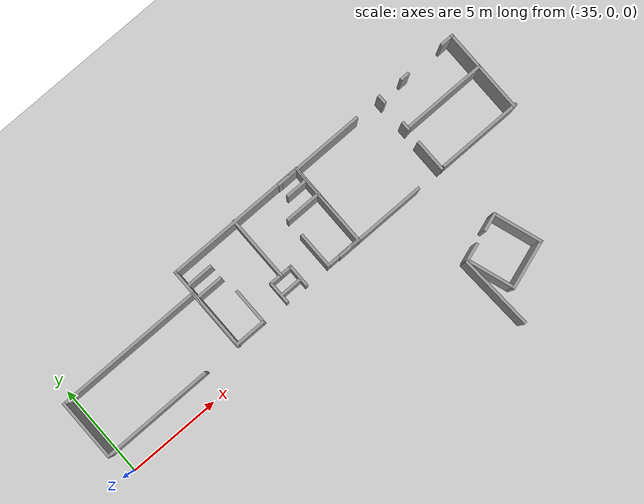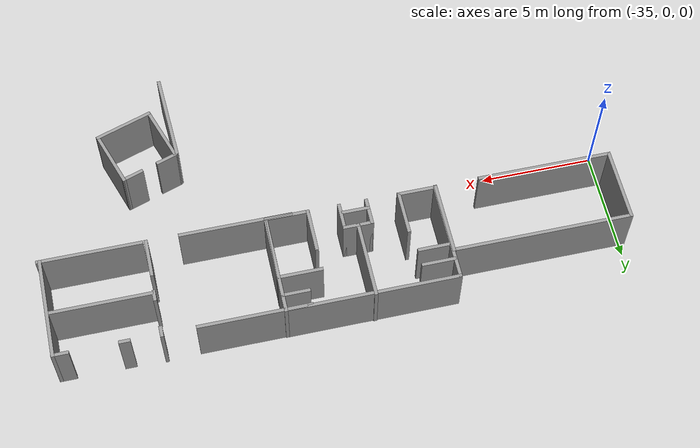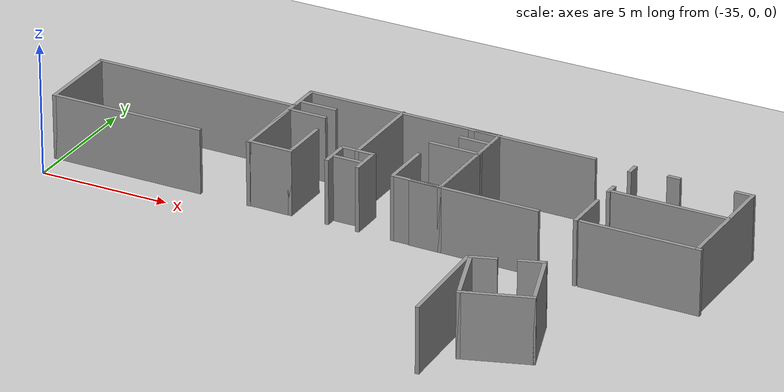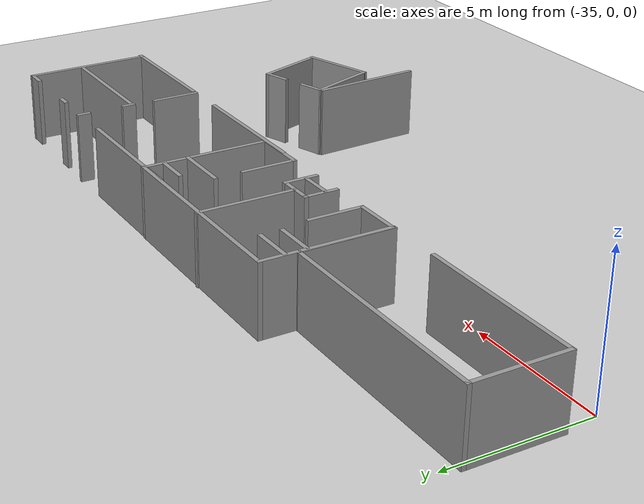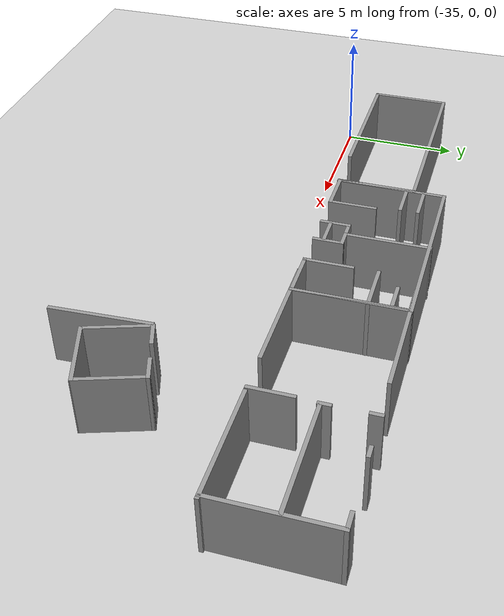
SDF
<sdf version="1.6">
 <world name="default">
  <model name="ground_plane">
   <static>1</static>
   <link name="link">
    <collision name="collision">
     <geometry><plane><normal>0 0 1</normal><size>100 100</size></plane></geometry>
     <surface><friction><ode><mu>100</mu><mu2>50</mu2></ode></friction></surface>
    </collision>
    <visual name="visual">
     <cast_shadows>0</cast_shadows>
     <geometry><plane><normal>0 0 1</normal><size>100 100</size></plane></geometry>
     <material>
      <script><uri>file://media/materials/scripts/gazebo.material</uri><name>Gazebo/Grey</name></script>
     </material>
    </visual>
   </link>
  </model>
  <model name="201/202">
   <pose>-23.5593 3.4958 0 0 -0 0</pose>
   <link name="Wall_10">
    <collision name="Wall_10_Collision">
     <geometry><box><size>7.62002 0.15 2.5</size></box></geometry>
     <pose>0 0 1.25 0 -0 0</pose>
    </collision>
    <visual name="Wall_10_Visual">
     <pose>0 0 1.25 0 -0 0</pose>
     <geometry><box><size>7.62002 0.15 2.5</size></box></geometry>
     <material>
      <script><uri>file://media/materials/scripts/gazebo.material</uri><name>Gazebo/Grey</name></script>
      <ambient>1 1 1 1</ambient>
     </material>
     <meta><layer>0</layer></meta>
    </visual>
    <pose>-0.004655 2.1906 0 0 -0 3.14159</pose>
   </link>
   <link name="Wall_11">
    <collision name="Wall_11_Collision">
     <geometry><box><size>4.572 0.15 2.5</size></box></geometry>
     <pose>0 0 1.25 0 -0 0</pose>
    </collision>
    <visual name="Wall_11_Visual">
     <pose>0 0 1.25 0 -0 0</pose>
     <geometry><box><size>4.572 0.15 2.5</size></box></geometry>
     <material>
      <script><uri>file://media/materials/scripts/gazebo.material</uri><name>Gazebo/Grey</name></script>
      <ambient>1 1 1 1</ambient>
     </material>
     <meta><layer>0</layer></meta>
    </visual>
    <pose>-3.73965 -0.020398 0 0 -0 -1.5708</pose>
   </link>
   <link name="Wall_13">
    <collision name="Wall_13_Collision">
     <geometry><box><size>2 0.15 2.5</size></box></geometry>
     <pose>0 0 1.25 0 -0 0</pose>
    </collision>
    <visual name="Wall_13_Visual">
     <pose>0 0 1.25 0 -0 0</pose>
     <geometry><box><size>2 0.15 2.5</size></box></geometry>
     <material>
      <script><uri>file://media/materials/scripts/gazebo.material</uri><name>Gazebo/Grey</name></script>
      <ambient>1 1 1 1</ambient>
     </material>
     <meta><layer>0</layer></meta>
    </visual>
    <pose>2.80535 -2.23095 0 0 -0 3.14159</pose>
   </link>
   <link name="Wall_14">
    <collision name="Wall_14_Collision">
     <geometry><box><size>2 0.15 2.5</size></box></geometry>
     <pose>0 0 1.25 0 -0 0</pose>
    </collision>
    <visual name="Wall_14_Visual">
     <pose>0 0 1.25 0 -0 0</pose>
     <geometry><box><size>2 0.15 2.5</size></box></geometry>
     <material>
      <script><uri>file://media/materials/scripts/gazebo.material</uri><name>Gazebo/Grey</name></script>
      <ambient>1 1 1 1</ambient>
     </material>
     <meta><layer>0</layer></meta>
    </visual>
    <pose>1.88035 -1.30595 0 0 -0 1.5708</pose>
   </link>
   <link name="Wall_16">
    <collision name="Wall_16_Collision">
     <geometry><box><size>3.5 0.15 2.5</size></box></geometry>
     <pose>0 0 1.25 0 -0 0</pose>
    </collision>
    <visual name="Wall_16_Visual">
     <pose>0 0 1.25 0 -0 0</pose>
     <geometry><box><size>3.5 0.15 2.5</size></box></geometry>
     <material>
      <script><uri>file://media/materials/scripts/gazebo.material</uri><name>Gazebo/Grey</name></script>
      <ambient>1 1 1 1</ambient>
     </material>
     <meta><layer>0</layer></meta>
    </visual>
    <pose>-0.091763 0.556398 0 0 -0 -1.5708</pose>
   </link>
   <link name="Wall_17">
    <collision name="Wall_17_Collision">
     <geometry><box><size>0.75 0.15 2.5</size></box></geometry>
     <pose>0 0 1.25 0 -0 0</pose>
    </collision>
    <visual name="Wall_17_Visual">
     <pose>0 0 1.25 0 -0 0</pose>
     <geometry><box><size>0.75 0.15 2.5</size></box></geometry>
     <material>
      <script><uri>file://media/materials/scripts/gazebo.material</uri><name>Gazebo/Grey</name></script>
      <ambient>1 1 1 1</ambient>
     </material>
     <meta><layer>0</layer></meta>
    </visual>
    <pose>0.208236 -1.1186 0 0 -0 0</pose>
   </link>
   <link name="Wall_18">
    <collision name="Wall_18_Collision">
     <geometry><box><size>1.25 0.15 2.5</size></box></geometry>
     <pose>0 0 1.25 0 -0 0</pose>
    </collision>
    <visual name="Wall_18_Visual">
     <pose>0 0 1.25 0 -0 0</pose>
     <geometry><box><size>1.25 0.15 2.5</size></box></geometry>
     <material>
      <script><uri>file://media/materials/scripts/gazebo.material</uri><name>Gazebo/Grey</name></script>
      <ambient>1 1 1 1</ambient>
     </material>
     <meta><layer>0</layer></meta>
    </visual>
    <pose>0.508237 -1.6686 0 0 -0 -1.5708</pose>
   </link>
   <link name="Wall_20">
    <collision name="Wall_20_Collision">
     <geometry><box><size>0.75 0.15 2.5</size></box></geometry>
     <pose>0 0 1.25 0 -0 0</pose>
    </collision>
    <visual name="Wall_20_Visual">
     <pose>0 0 1.25 0 -0 0</pose>
     <geometry><box><size>0.75 0.15 2.5</size></box></geometry>
     <material>
      <script><uri>file://media/materials/scripts/gazebo.material</uri><name>Gazebo/Grey</name></script>
      <ambient>1 1 1 1</ambient>
     </material>
     <meta><layer>0</layer></meta>
    </visual>
    <pose>-0.391763 -1.1186 0 0 -0 3.14159</pose>
   </link>
   <link name="Wall_21">
    <collision name="Wall_21_Collision">
     <geometry><box><size>1.25 0.15 2.5</size></box></geometry>
     <pose>0 0 1.25 0 -0 0</pose>
    </collision>
    <visual name="Wall_21_Visual">
     <pose>0 0 1.25 0 -0 0</pose>
     <geometry><box><size>1.25 0.15 2.5</size></box></geometry>
     <material>
      <script><uri>file://media/materials/scripts/gazebo.material</uri><name>Gazebo/Grey</name></script>
      <ambient>1 1 1 1</ambient>
     </material>
     <meta><layer>0</layer></meta>
    </visual>
    <pose>-0.691764 -1.6686 0 0 -0 -1.5708</pose>
   </link>
   <link name="Wall_23">
    <collision name="Wall_23_Collision">
     <geometry><box><size>1.75 0.15 2.5</size></box></geometry>
     <pose>0 0 1.25 0 -0 0</pose>
    </collision>
    <visual name="Wall_23_Visual">
     <pose>0 0 1.25 0 -0 0</pose>
     <geometry><box><size>1.75 0.15 2.5</size></box></geometry>
     <material>
      <script><uri>file://media/materials/scripts/gazebo.material</uri><name>Gazebo/Grey</name></script>
      <ambient>1 1 1 1</ambient>
     </material>
     <meta><layer>0</layer></meta>
    </visual>
    <pose>-2.93966 -2.2314 0 0 -0 0</pose>
   </link>
   <link name="Wall_24">
    <collision name="Wall_24_Collision">
     <geometry><box><size>2 0.15 2.5</size></box></geometry>
     <pose>0 0 1.25 0 -0 0</pose>
    </collision>
    <visual name="Wall_24_Visual">
     <pose>0 0 1.25 0 -0 0</pose>
     <geometry><box><size>2 0.15 2.5</size></box></geometry>
     <material>
      <script><uri>file://media/materials/scripts/gazebo.material</uri><name>Gazebo/Grey</name></script>
      <ambient>1 1 1 1</ambient>
     </material>
     <meta><layer>0</layer></meta>
    </visual>
    <pose>-2.13965 -1.3064 0 0 -0 1.5708</pose>
   </link>
   <link name="Wall_28">
    <collision name="Wall_28_Collision">
     <geometry><box><size>1.5 0.15 2.5</size></box></geometry>
     <pose>0 0 1.25 0 -0 0</pose>
    </collision>
    <visual name="Wall_28_Visual">
     <pose>0 0 1.25 0 -0 0</pose>
     <geometry><box><size>1.5 0.15 2.5</size></box></geometry>
     <material>
      <script><uri>file://media/materials/scripts/gazebo.material</uri><name>Gazebo/Grey</name></script>
      <ambient>1 1 1 1</ambient>
     </material>
     <meta><layer>0</layer></meta>
    </visual>
    <pose>-3.01876 1.34811 0 0 -0 0</pose>
   </link>
   <link name="Wall_30">
    <collision name="Wall_30_Collision">
     <geometry><box><size>1.5 0.15 2.5</size></box></geometry>
     <pose>0 0 1.25 0 -0 0</pose>
    </collision>
    <visual name="Wall_30_Visual">
     <pose>0 0 1.25 0 -0 0</pose>
     <geometry><box><size>1.5 0.15 2.5</size></box></geometry>
     <material>
      <script><uri>file://media/materials/scripts/gazebo.material</uri><name>Gazebo/Grey</name></script>
      <ambient>1 1 1 1</ambient>
     </material>
     <meta><layer>0</layer></meta>
    </visual>
    <pose>-3.03023 0.625411 0 0 -0 0</pose>
   </link>
   <link name="Wall_32">
    <collision name="Wall_32_Collision">
     <geometry><box><size>2 0.15 2.5</size></box></geometry>
     <pose>0 0 1.25 0 -0 0</pose>
    </collision>
    <visual name="Wall_32_Visual">
     <pose>0 0 1.25 0 -0 0</pose>
     <geometry><box><size>2 0.15 2.5</size></box></geometry>
     <material>
      <script><uri>file://media/materials/scripts/gazebo.material</uri><name>Gazebo/Grey</name></script>
      <ambient>1 1 1 1</ambient>
     </material>
     <meta><layer>0</layer></meta>
    </visual>
    <pose>2.81466 0.625411 0 0 -0 3.14159</pose>
   </link>
   <link name="Wall_34">
    <collision name="Wall_34_Collision">
     <geometry><box><size>1.25 0.15 2.5</size></box></geometry>
     <pose>0 0 1.25 0 -0 0</pose>
    </collision>
    <visual name="Wall_34_Visual">
     <pose>0 0 1.25 0 -0 0</pose>
     <geometry><box><size>1.25 0.15 2.5</size></box></geometry>
     <material>
      <script><uri>file://media/materials/scripts/gazebo.material</uri><name>Gazebo/Grey</name></script>
      <ambient>1 1 1 1</ambient>
     </material>
     <meta><layer>0</layer></meta>
    </visual>
    <pose>3.16672 1.48576 0 0 -0 3.14159</pose>
   </link>
   <link name="Wall_36">
    <collision name="Wall_36_Collision">
     <geometry><box><size>1.25 0.15 2.5</size></box></geometry>
     <pose>0 0 1.25 0 -0 0</pose>
    </collision>
    <visual name="Wall_36_Visual">
     <pose>0 0 1.25 0 -0 0</pose>
     <geometry><box><size>1.25 0.15 2.5</size></box></geometry>
     <material>
      <script><uri>file://media/materials/scripts/gazebo.material</uri><name>Gazebo/Grey</name></script>
      <ambient>1 1 1 1</ambient>
     </material>
     <meta><layer>0</layer></meta>
    </visual>
    <pose>-0.138273 -1.8524 0 0 -0 0</pose>
   </link>
   <link name="Wall_9">
    <collision name="Wall_9_Collision">
     <geometry><box><size>4.572 0.15 2.5</size></box></geometry>
     <pose>0 0 1.25 0 -0 0</pose>
    </collision>
    <visual name="Wall_9_Visual">
     <pose>0 0 1.25 0 -0 0</pose>
     <geometry><box><size>4.572 0.15 2.5</size></box></geometry>
     <material>
      <script><uri>file://media/materials/scripts/gazebo.material</uri><name>Gazebo/Grey</name></script>
      <ambient>1 1 1 1</ambient>
     </material>
     <meta><layer>0</layer></meta>
    </visual>
    <pose>3.73035 -0.020175 0 0 -0 1.5708</pose>
   </link>
   <static>1</static>
  </model>
  <model name="197A">
   <link name="Wall_33">
    <pose>3.925 0 0 0 -0 1.5708</pose>
    <visual name="Wall_33_Visual">
     <pose>0 0 1.25 0 -0 0</pose>
     <geometry><box><size>3.336 0.15 2.5</size></box></geometry>
     <material>
      <script><uri>file://media/materials/scripts/gazebo.material</uri><name>Gazebo/Grey</name></script>
      <ambient>1 1 1 1</ambient>
      <shader type="pixel"/>
     </material>
     <meta><layer>0</layer></meta>
    </visual>
    <collision name="Wall_33_Collision">
     <pose>0 0 1.25 0 -0 0</pose>
     <geometry><box><size>3.336 0.15 2.5</size></box></geometry>
     <surface>
      <friction>
       <ode><mu>1</mu><mu2>1</mu2><fdir1>0 0 0</fdir1><slip1>0</slip1><slip2>0</slip2></ode>
       <torsional>
        <coefficient>1</coefficient>
        <patch_radius>0</patch_radius>
        <surface_radius>0</surface_radius>
        <use_patch_radius>1</use_patch_radius>
        <ode><slip>0</slip></ode>
       </torsional>
      </friction>
      <bounce><restitution_coefficient>0</restitution_coefficient><threshold>1e+06</threshold></bounce>
      <contact>
       <collide_without_contact>0</collide_without_contact>
       <collide_without_contact_bitmask>1</collide_without_contact_bitmask>
       <collide_bitmask>1</collide_bitmask>
       <ode>
        <soft_cfm>0</soft_cfm>
        <soft_erp>0.2</soft_erp>
        <kp>1e+13</kp>
        <kd>1</kd>
        <max_vel>0.01</max_vel>
        <min_depth>0</min_depth>
       </ode>
       <bullet>
        <split_impulse>1</split_impulse>
        <split_impulse_penetration_threshold>-0.01</split_impulse_penetration_threshold>
        <soft_cfm>0</soft_cfm>
        <soft_erp>0.2</soft_erp>
        <kp>1e+13</kp>
        <kd>1</kd>
       </bullet>
      </contact>
     </surface>
    </collision>
   </link>
   <link name="Wall_34">
    <pose>0 1.593 0 0 -0 3.14159</pose>
    <visual name="Wall_34_Visual">
     <pose>0 0 1.25 0 -0 0</pose>
     <geometry><box><size>8 0.15 2.5</size></box></geometry>
     <material>
      <script><uri>file://media/materials/scripts/gazebo.material</uri><name>Gazebo/Grey</name></script>
      <ambient>1 1 1 1</ambient>
      <shader type="pixel"/>
     </material>
     <meta><layer>0</layer></meta>
    </visual>
    <collision name="Wall_34_Collision">
     <pose>0 0 1.25 0 -0 0</pose>
     <geometry><box><size>8 0.15 2.5</size></box></geometry>
     <surface>
      <friction>
       <ode><mu>1</mu><mu2>1</mu2><fdir1>0 0 0</fdir1><slip1>0</slip1><slip2>0</slip2></ode>
       <torsional>
        <coefficient>1</coefficient>
        <patch_radius>0</patch_radius>
        <surface_radius>0</surface_radius>
        <use_patch_radius>1</use_patch_radius>
        <ode><slip>0</slip></ode>
       </torsional>
      </friction>
      <bounce><restitution_coefficient>0</restitution_coefficient><threshold>1e+06</threshold></bounce>
      <contact>
       <collide_without_contact>0</collide_without_contact>
       <collide_without_contact_bitmask>1</collide_without_contact_bitmask>
       <collide_bitmask>1</collide_bitmask>
       <ode>
        <soft_cfm>0</soft_cfm>
        <soft_erp>0.2</soft_erp>
        <kp>1e+13</kp>
        <kd>1</kd>
        <max_vel>0.01</max_vel>
        <min_depth>0</min_depth>
       </ode>
       <bullet>
        <split_impulse>1</split_impulse>
        <split_impulse_penetration_threshold>-0.01</split_impulse_penetration_threshold>
        <soft_cfm>0</soft_cfm>
        <soft_erp>0.2</soft_erp>
        <kp>1e+13</kp>
        <kd>1</kd>
       </bullet>
      </contact>
     </surface>
    </collision>
   </link>
   <link name="Wall_35">
    <pose>-3.925 0 0 0 0 -1.5708</pose>
    <visual name="Wall_35_Visual">
     <pose>0 0 1.25 0 -0 0</pose>
     <geometry><box><size>3.336 0.15 2.5</size></box></geometry>
     <material>
      <script><uri>file://media/materials/scripts/gazebo.material</uri><name>Gazebo/Grey</name></script>
      <ambient>1 1 1 1</ambient>
      <shader type="pixel"/>
     </material>
     <meta><layer>0</layer></meta>
    </visual>
    <collision name="Wall_35_Collision">
     <pose>0 0 1.25 0 -0 0</pose>
     <geometry><box><size>3.336 0.15 2.5</size></box></geometry>
     <surface>
      <friction>
       <ode><mu>1</mu><mu2>1</mu2><fdir1>0 0 0</fdir1><slip1>0</slip1><slip2>0</slip2></ode>
       <torsional>
        <coefficient>1</coefficient>
        <patch_radius>0</patch_radius>
        <surface_radius>0</surface_radius>
        <use_patch_radius>1</use_patch_radius>
        <ode><slip>0</slip></ode>
       </torsional>
      </friction>
      <bounce><restitution_coefficient>0</restitution_coefficient><threshold>1e+06</threshold></bounce>
      <contact>
       <collide_without_contact>0</collide_without_contact>
       <collide_without_contact_bitmask>1</collide_without_contact_bitmask>
       <collide_bitmask>1</collide_bitmask>
       <ode>
        <soft_cfm>0</soft_cfm>
        <soft_erp>0.2</soft_erp>
        <kp>1e+13</kp>
        <kd>1</kd>
        <max_vel>0.01</max_vel>
        <min_depth>0</min_depth>
       </ode>
       <bullet>
        <split_impulse>1</split_impulse>
        <split_impulse_penetration_threshold>-0.01</split_impulse_penetration_threshold>
        <soft_cfm>0</soft_cfm>
        <soft_erp>0.2</soft_erp>
        <kp>1e+13</kp>
        <kd>1</kd>
       </bullet>
      </contact>
     </surface>
    </collision>
   </link>
   <link name="Wall_37">
    <pose>-1 -1.593 0 0 -0 0</pose>
    <visual name="Wall_37_Visual">
     <pose>0 0 1.25 0 -0 0</pose>
     <geometry><box><size>6 0.15 2.5</size></box></geometry>
     <material>
      <script><uri>file://media/materials/scripts/gazebo.material</uri><name>Gazebo/Grey</name></script>
      <ambient>1 1 1 1</ambient>
      <shader type="pixel"/>
     </material>
     <meta><layer>0</layer></meta>
    </visual>
    <collision name="Wall_37_Collision">
     <pose>0 0 1.25 0 -0 0</pose>
     <geometry><box><size>6 0.15 2.5</size></box></geometry>
     <surface>
      <friction>
       <ode><mu>1</mu><mu2>1</mu2><fdir1>0 0 0</fdir1><slip1>0</slip1><slip2>0</slip2></ode>
       <torsional>
        <coefficient>1</coefficient>
        <patch_radius>0</patch_radius>
        <surface_radius>0</surface_radius>
        <use_patch_radius>1</use_patch_radius>
        <ode><slip>0</slip></ode>
       </torsional>
      </friction>
      <bounce><restitution_coefficient>0</restitution_coefficient><threshold>1e+06</threshold></bounce>
      <contact>
       <collide_without_contact>0</collide_without_contact>
       <collide_without_contact_bitmask>1</collide_without_contact_bitmask>
       <collide_bitmask>1</collide_bitmask>
       <ode>
        <soft_cfm>0</soft_cfm>
        <soft_erp>0.2</soft_erp>
        <kp>1e+13</kp>
        <kd>1</kd>
        <max_vel>0.01</max_vel>
        <min_depth>0</min_depth>
       </ode>
       <bullet>
        <split_impulse>1</split_impulse>
        <split_impulse_penetration_threshold>-0.01</split_impulse_penetration_threshold>
        <soft_cfm>0</soft_cfm>
        <soft_erp>0.2</soft_erp>
        <kp>1e+13</kp>
        <kd>1</kd>
       </bullet>
      </contact>
     </surface>
    </collision>
   </link>
   <static>1</static>
   <pose>-31.262 2.82988 0 0 -0 0</pose>
  </model>
  <model name="303">
   <link name="Wall_44">
    <pose>-2.211 2.18012 0 0 -0 3.14159</pose>
    <inertial>
     <inertia><ixx>0</ixx><ixy>0</ixy><ixz>0</ixz><iyy>0</iyy><iyz>0</iyz><izz>0</izz></inertia>
     <mass>0</mass>
    </inertial>
    <visual name="Wall_44_Visual">
     <pose>0 0 1.25 0 -0 0</pose>
     <geometry><box><size>4.94014 0.15 2.5</size></box></geometry>
     <material>
      <script><uri>file://media/materials/scripts/gazebo.material</uri><name>Gazebo/Grey</name></script>
      <ambient>1 1 1 1</ambient>
      <shader type="pixel"/>
     </material>
     <meta><layer>0</layer></meta>
    </visual>
    <collision name="Wall_44_Collision">
     <pose>0 0 1.25 0 -0 0</pose>
     <geometry><box><size>4.94014 0.15 2.5</size></box></geometry>
     <surface>
      <friction>
       <ode><mu>1</mu><mu2>1</mu2><fdir1>0 0 0</fdir1><slip1>0</slip1><slip2>0</slip2></ode>
       <torsional>
        <coefficient>1</coefficient>
        <patch_radius>0</patch_radius>
        <surface_radius>0</surface_radius>
        <use_patch_radius>1</use_patch_radius>
        <ode><slip>0</slip></ode>
       </torsional>
      </friction>
      <bounce><restitution_coefficient>0</restitution_coefficient><threshold>1e+06</threshold></bounce>
      <contact>
       <collide_without_contact>0</collide_without_contact>
       <collide_without_contact_bitmask>1</collide_without_contact_bitmask>
       <collide_bitmask>1</collide_bitmask>
       <ode>
        <soft_cfm>0</soft_cfm>
        <soft_erp>0.2</soft_erp>
        <kp>1e+13</kp>
        <kd>1</kd>
        <max_vel>0.01</max_vel>
        <min_depth>0</min_depth>
       </ode>
       <bullet>
        <split_impulse>1</split_impulse>
        <split_impulse_penetration_threshold>-0.01</split_impulse_penetration_threshold>
        <soft_cfm>0</soft_cfm>
        <soft_erp>0.2</soft_erp>
        <kp>1e+13</kp>
        <kd>1</kd>
       </bullet>
      </contact>
     </surface>
    </collision>
   </link>
   <link name="Wall_45">
    <pose>-3.511 -0.030881 0 0 0 -1.5708</pose>
    <visual name="Wall_45_Visual">
     <pose>0 0 1.25 0 -0 0</pose>
     <geometry><box><size>4.572 0.15 2.5</size></box></geometry>
     <material>
      <script><uri>file://media/materials/scripts/gazebo.material</uri><name>Gazebo/Grey</name></script>
      <ambient>1 1 1 1</ambient>
      <shader type="pixel"/>
     </material>
     <meta><layer>0</layer></meta>
    </visual>
    <collision name="Wall_45_Collision">
     <pose>0 0 1.25 0 -0 0</pose>
     <geometry><box><size>4.572 0.15 2.5</size></box></geometry>
     <surface>
      <friction>
       <ode><mu>1</mu><mu2>1</mu2><fdir1>0 0 0</fdir1><slip1>0</slip1><slip2>0</slip2></ode>
       <torsional>
        <coefficient>1</coefficient>
        <patch_radius>0</patch_radius>
        <surface_radius>0</surface_radius>
        <use_patch_radius>1</use_patch_radius>
        <ode><slip>0</slip></ode>
       </torsional>
      </friction>
      <bounce><restitution_coefficient>0</restitution_coefficient><threshold>1e+06</threshold></bounce>
      <contact>
       <collide_without_contact>0</collide_without_contact>
       <collide_without_contact_bitmask>1</collide_without_contact_bitmask>
       <collide_bitmask>1</collide_bitmask>
       <ode>
        <soft_cfm>0</soft_cfm>
        <soft_erp>0.2</soft_erp>
        <kp>1e+13</kp>
        <kd>1</kd>
        <max_vel>0.01</max_vel>
        <min_depth>0</min_depth>
       </ode>
       <bullet>
        <split_impulse>1</split_impulse>
        <split_impulse_penetration_threshold>-0.01</split_impulse_penetration_threshold>
        <soft_cfm>0</soft_cfm>
        <soft_erp>0.2</soft_erp>
        <kp>1e+13</kp>
        <kd>1</kd>
       </bullet>
      </contact>
     </surface>
    </collision>
   </link>
   <link name="Wall_46">
    <pose>-2.211 -2.24188 0 0 -0 0</pose>
    <inertial>
     <inertia><ixx>0</ixx><ixy>0</ixy><ixz>0</ixz><iyy>0</iyy><iyz>0</iyz><izz>0</izz></inertia>
     <mass>0</mass>
    </inertial>
    <visual name="Wall_46_Visual">
     <pose>0 0 1.25 0 -0 0</pose>
     <geometry><box><size>4.9634 0.15 2.5</size></box></geometry>
     <material>
      <script><uri>file://media/materials/scripts/gazebo.material</uri><name>Gazebo/Grey</name></script>
      <ambient>1 1 1 1</ambient>
      <shader type="pixel"/>
     </material>
     <meta><layer>0</layer></meta>
    </visual>
    <collision name="Wall_46_Collision">
     <pose>0 0 1.25 0 -0 0</pose>
     <geometry><box><size>4.9634 0.15 2.5</size></box></geometry>
     <surface>
      <friction>
       <ode><mu>1</mu><mu2>1</mu2><fdir1>0 0 0</fdir1><slip1>0</slip1><slip2>0</slip2></ode>
       <torsional>
        <coefficient>1</coefficient>
        <patch_radius>0</patch_radius>
        <surface_radius>0</surface_radius>
        <use_patch_radius>1</use_patch_radius>
        <ode><slip>0</slip></ode>
       </torsional>
      </friction>
      <bounce><restitution_coefficient>0</restitution_coefficient><threshold>1e+06</threshold></bounce>
      <contact>
       <collide_without_contact>0</collide_without_contact>
       <collide_without_contact_bitmask>1</collide_without_contact_bitmask>
       <collide_bitmask>1</collide_bitmask>
       <ode>
        <soft_cfm>0</soft_cfm>
        <soft_erp>0.2</soft_erp>
        <kp>1e+13</kp>
        <kd>1</kd>
        <max_vel>0.01</max_vel>
        <min_depth>0</min_depth>
       </ode>
       <bullet>
        <split_impulse>1</split_impulse>
        <split_impulse_penetration_threshold>-0.01</split_impulse_penetration_threshold>
        <soft_cfm>0</soft_cfm>
        <soft_erp>0.2</soft_erp>
        <kp>1e+13</kp>
        <kd>1</kd>
       </bullet>
      </contact>
     </surface>
    </collision>
   </link>
   <link name="Wall_49">
    <pose>4.07488 -2.24188 0 0 -0 0</pose>
    <visual name="Wall_49_Visual">
     <pose>0 0 1.25 0 -0 0</pose>
     <geometry><box><size>4.572 0.15 2.5</size></box></geometry>
     <material>
      <script><uri>file://media/materials/scripts/gazebo.material</uri><name>Gazebo/Grey</name></script>
      <ambient>1 1 1 1</ambient>
      <shader type="pixel"/>
     </material>
     <meta><layer>0</layer></meta>
    </visual>
    <collision name="Wall_49_Collision">
     <pose>0 0 1.25 0 -0 0</pose>
     <geometry><box><size>4.572 0.15 2.5</size></box></geometry>
     <surface>
      <friction>
       <ode><mu>1</mu><mu2>1</mu2><fdir1>0 0 0</fdir1><slip1>0</slip1><slip2>0</slip2></ode>
       <torsional>
        <coefficient>1</coefficient>
        <patch_radius>0</patch_radius>
        <surface_radius>0</surface_radius>
        <use_patch_radius>1</use_patch_radius>
        <ode><slip>0</slip></ode>
       </torsional>
      </friction>
      <bounce><restitution_coefficient>0</restitution_coefficient><threshold>1e+06</threshold></bounce>
      <contact>
       <collide_without_contact>0</collide_without_contact>
       <collide_without_contact_bitmask>1</collide_without_contact_bitmask>
       <collide_bitmask>1</collide_bitmask>
       <ode>
        <soft_cfm>0</soft_cfm>
        <soft_erp>0.2</soft_erp>
        <kp>1e+13</kp>
        <kd>1</kd>
        <max_vel>0.01</max_vel>
        <min_depth>0</min_depth>
       </ode>
       <bullet>
        <split_impulse>1</split_impulse>
        <split_impulse_penetration_threshold>-0.01</split_impulse_penetration_threshold>
        <soft_cfm>0</soft_cfm>
        <soft_erp>0.2</soft_erp>
        <kp>1e+13</kp>
        <kd>1</kd>
       </bullet>
      </contact>
     </surface>
    </collision>
   </link>
   <link name="Wall_50">
    <pose>6.19575 -0.030874 0 0 -0 1.5708</pose>
    <visual name="Wall_50_Visual">
     <pose>0 0 1.25 0 -0 0</pose>
     <geometry><box><size>4.572 0.15 2.5</size></box></geometry>
     <material>
      <script><uri>file://media/materials/scripts/gazebo.material</uri><name>Gazebo/Grey</name></script>
      <ambient>1 1 1 1</ambient>
      <shader type="pixel"/>
     </material>
     <meta><layer>0</layer></meta>
    </visual>
    <collision name="Wall_50_Collision">
     <pose>0 0 1.25 0 -0 0</pose>
     <geometry><box><size>4.572 0.15 2.5</size></box></geometry>
     <surface>
      <friction>
       <ode><mu>1</mu><mu2>1</mu2><fdir1>0 0 0</fdir1><slip1>0</slip1><slip2>0</slip2></ode>
       <torsional>
        <coefficient>1</coefficient>
        <patch_radius>0</patch_radius>
        <surface_radius>0</surface_radius>
        <use_patch_radius>1</use_patch_radius>
        <ode><slip>0</slip></ode>
       </torsional>
      </friction>
      <bounce><restitution_coefficient>0</restitution_coefficient><threshold>1e+06</threshold></bounce>
      <contact>
       <collide_without_contact>0</collide_without_contact>
       <collide_without_contact_bitmask>1</collide_without_contact_bitmask>
       <collide_bitmask>1</collide_bitmask>
       <ode>
        <soft_cfm>0</soft_cfm>
        <soft_erp>0.2</soft_erp>
        <kp>1e+13</kp>
        <kd>1</kd>
        <max_vel>0.01</max_vel>
        <min_depth>0</min_depth>
       </ode>
       <bullet>
        <split_impulse>1</split_impulse>
        <split_impulse_penetration_threshold>-0.01</split_impulse_penetration_threshold>
        <soft_cfm>0</soft_cfm>
        <soft_erp>0.2</soft_erp>
        <kp>1e+13</kp>
        <kd>1</kd>
       </bullet>
      </contact>
     </surface>
    </collision>
   </link>
   <link name="Wall_52">
    <pose>5.89928 2.18011 0 0 -0 3.14159</pose>
    <visual name="Wall_52_Visual">
     <pose>0 0 1.25 0 -0 0</pose>
     <geometry><box><size>0.75 0.15 2.5</size></box></geometry>
     <material>
      <script><uri>file://media/materials/scripts/gazebo.material</uri><name>Gazebo/Grey</name></script>
      <ambient>1 1 1 1</ambient>
      <shader type="pixel"/>
     </material>
     <meta><layer>0</layer></meta>
    </visual>
    <collision name="Wall_52_Collision">
     <pose>0 0 1.25 0 -0 0</pose>
     <geometry><box><size>0.75 0.15 2.5</size></box></geometry>
     <surface>
      <friction>
       <ode><mu>1</mu><mu2>1</mu2><fdir1>0 0 0</fdir1><slip1>0</slip1><slip2>0</slip2></ode>
       <torsional>
        <coefficient>1</coefficient>
        <patch_radius>0</patch_radius>
        <surface_radius>0</surface_radius>
        <use_patch_radius>1</use_patch_radius>
        <ode><slip>0</slip></ode>
       </torsional>
      </friction>
      <bounce><restitution_coefficient>0</restitution_coefficient><threshold>1e+06</threshold></bounce>
      <contact>
       <collide_without_contact>0</collide_without_contact>
       <collide_without_contact_bitmask>1</collide_without_contact_bitmask>
       <collide_bitmask>1</collide_bitmask>
       <ode>
        <soft_cfm>0</soft_cfm>
        <soft_erp>0.2</soft_erp>
        <kp>1e+13</kp>
        <kd>1</kd>
        <max_vel>0.01</max_vel>
        <min_depth>0</min_depth>
       </ode>
       <bullet>
        <split_impulse>1</split_impulse>
        <split_impulse_penetration_threshold>-0.01</split_impulse_penetration_threshold>
        <soft_cfm>0</soft_cfm>
        <soft_erp>0.2</soft_erp>
        <kp>1e+13</kp>
        <kd>1</kd>
       </bullet>
      </contact>
     </surface>
    </collision>
   </link>
   <link name="Wall_54">
    <pose>3.24011 2.18011 0 0 -0 3.14159</pose>
    <visual name="Wall_54_Visual">
     <pose>0 0 1.25 0 -0 0</pose>
     <geometry><box><size>0.5 0.15 2.5</size></box></geometry>
     <material>
      <script><uri>file://media/materials/scripts/gazebo.material</uri><name>Gazebo/Grey</name></script>
      <ambient>1 1 1 1</ambient>
      <shader type="pixel"/>
     </material>
     <meta><layer>0</layer></meta>
    </visual>
    <collision name="Wall_54_Collision">
     <pose>0 0 1.25 0 -0 0</pose>
     <geometry><box><size>0.5 0.15 2.5</size></box></geometry>
     <surface>
      <friction>
       <ode><mu>1</mu><mu2>1</mu2><fdir1>0 0 0</fdir1><slip1>0</slip1><slip2>0</slip2></ode>
       <torsional>
        <coefficient>1</coefficient>
        <patch_radius>0</patch_radius>
        <surface_radius>0</surface_radius>
        <use_patch_radius>1</use_patch_radius>
        <ode><slip>0</slip></ode>
       </torsional>
      </friction>
      <bounce><restitution_coefficient>0</restitution_coefficient><threshold>1e+06</threshold></bounce>
      <contact>
       <collide_without_contact>0</collide_without_contact>
       <collide_without_contact_bitmask>1</collide_without_contact_bitmask>
       <collide_bitmask>1</collide_bitmask>
       <ode>
        <soft_cfm>0</soft_cfm>
        <soft_erp>0.2</soft_erp>
        <kp>1e+13</kp>
        <kd>1</kd>
        <max_vel>0.01</max_vel>
        <min_depth>0</min_depth>
       </ode>
       <bullet>
        <split_impulse>1</split_impulse>
        <split_impulse_penetration_threshold>-0.01</split_impulse_penetration_threshold>
        <soft_cfm>0</soft_cfm>
        <soft_erp>0.2</soft_erp>
        <kp>1e+13</kp>
        <kd>1</kd>
       </bullet>
      </contact>
     </surface>
    </collision>
   </link>
   <link name="Wall_57">
    <pose>1.71633 0.366875 0 0 0 -1.5708</pose>
    <visual name="Wall_57_Visual">
     <pose>0 0 1.25 0 -0 0</pose>
     <geometry><box><size>0.5 0.15 2.5</size></box></geometry>
     <material>
      <script><uri>file://media/materials/scripts/gazebo.material</uri><name>Gazebo/Grey</name></script>
      <ambient>1 1 1 1</ambient>
      <shader type="pixel"/>
     </material>
     <meta><layer>0</layer></meta>
    </visual>
    <collision name="Wall_57_Collision">
     <pose>0 0 1.25 0 -0 0</pose>
     <geometry><box><size>0.5 0.15 2.5</size></box></geometry>
     <surface>
      <friction>
       <ode><mu>1</mu><mu2>1</mu2><fdir1>0 0 0</fdir1><slip1>0</slip1><slip2>0</slip2></ode>
       <torsional>
        <coefficient>1</coefficient>
        <patch_radius>0</patch_radius>
        <surface_radius>0</surface_radius>
        <use_patch_radius>1</use_patch_radius>
        <ode><slip>0</slip></ode>
       </torsional>
      </friction>
      <bounce><restitution_coefficient>0</restitution_coefficient><threshold>1e+06</threshold></bounce>
      <contact>
       <collide_without_contact>0</collide_without_contact>
       <collide_without_contact_bitmask>1</collide_without_contact_bitmask>
       <collide_bitmask>1</collide_bitmask>
       <ode>
        <soft_cfm>0</soft_cfm>
        <soft_erp>0.2</soft_erp>
        <kp>1e+13</kp>
        <kd>1</kd>
        <max_vel>0.01</max_vel>
        <min_depth>0</min_depth>
       </ode>
       <bullet>
        <split_impulse>1</split_impulse>
        <split_impulse_penetration_threshold>-0.01</split_impulse_penetration_threshold>
        <soft_cfm>0</soft_cfm>
        <soft_erp>0.2</soft_erp>
        <kp>1e+13</kp>
        <kd>1</kd>
       </bullet>
      </contact>
     </surface>
    </collision>
   </link>
   <link name="Wall_59">
    <pose>1.66365 -1.44189 0 0 0 -1.5708</pose>
    <visual name="Wall_59_Visual">
     <pose>0 0 1.25 0 -0 0</pose>
     <geometry><box><size>1.75 0.15 2.5</size></box></geometry>
     <material>
      <script><uri>file://media/materials/scripts/gazebo.material</uri><name>Gazebo/Grey</name></script>
      <ambient>1 1 1 1</ambient>
      <shader type="pixel"/>
     </material>
     <meta><layer>0</layer></meta>
    </visual>
    <collision name="Wall_59_Collision">
     <pose>0 0 1.25 0 -0 0</pose>
     <geometry><box><size>1.75 0.15 2.5</size></box></geometry>
     <surface>
      <friction>
       <ode><mu>1</mu><mu2>1</mu2><fdir1>0 0 0</fdir1><slip1>0</slip1><slip2>0</slip2></ode>
       <torsional>
        <coefficient>1</coefficient>
        <patch_radius>0</patch_radius>
        <surface_radius>0</surface_radius>
        <use_patch_radius>1</use_patch_radius>
        <ode><slip>0</slip></ode>
       </torsional>
      </friction>
      <bounce><restitution_coefficient>0</restitution_coefficient><threshold>1e+06</threshold></bounce>
      <contact>
       <collide_without_contact>0</collide_without_contact>
       <collide_without_contact_bitmask>1</collide_without_contact_bitmask>
       <collide_bitmask>1</collide_bitmask>
       <ode>
        <soft_cfm>0</soft_cfm>
        <soft_erp>0.2</soft_erp>
        <kp>1e+13</kp>
        <kd>1</kd>
        <max_vel>0.01</max_vel>
        <min_depth>0</min_depth>
       </ode>
       <bullet>
        <split_impulse>1</split_impulse>
        <split_impulse_penetration_threshold>-0.01</split_impulse_penetration_threshold>
        <soft_cfm>0</soft_cfm>
        <soft_erp>0.2</soft_erp>
        <kp>1e+13</kp>
        <kd>1</kd>
       </bullet>
      </contact>
     </surface>
    </collision>
   </link>
   <link name="Wall_61">
    <pose>3.98908 0.235747 0 0 -0 0</pose>
    <visual name="Wall_61_Visual">
     <pose>0 0 1.25 0 -0 0</pose>
     <geometry><box><size>4.5 0.15 2.5</size></box></geometry>
     <material>
      <script><uri>file://media/materials/scripts/gazebo.material</uri><name>Gazebo/Grey</name></script>
      <ambient>1 1 1 1</ambient>
      <shader type="pixel"/>
     </material>
     <meta><layer>0</layer></meta>
    </visual>
    <collision name="Wall_61_Collision">
     <pose>0 0 1.25 0 -0 0</pose>
     <geometry><box><size>4.5 0.15 2.5</size></box></geometry>
     <surface>
      <friction>
       <ode><mu>1</mu><mu2>1</mu2><fdir1>0 0 0</fdir1><slip1>0</slip1><slip2>0</slip2></ode>
       <torsional>
        <coefficient>1</coefficient>
        <patch_radius>0</patch_radius>
        <surface_radius>0</surface_radius>
        <use_patch_radius>1</use_patch_radius>
        <ode><slip>0</slip></ode>
       </torsional>
      </friction>
      <bounce><restitution_coefficient>0</restitution_coefficient><threshold>1e+06</threshold></bounce>
      <contact>
       <collide_without_contact>0</collide_without_contact>
       <collide_without_contact_bitmask>1</collide_without_contact_bitmask>
       <collide_bitmask>1</collide_bitmask>
       <ode>
        <soft_cfm>0</soft_cfm>
        <soft_erp>0.2</soft_erp>
        <kp>1e+13</kp>
        <kd>1</kd>
        <max_vel>0.01</max_vel>
        <min_depth>0</min_depth>
       </ode>
       <bullet>
        <split_impulse>1</split_impulse>
        <split_impulse_penetration_threshold>-0.01</split_impulse_penetration_threshold>
        <soft_cfm>0</soft_cfm>
        <soft_erp>0.2</soft_erp>
        <kp>1e+13</kp>
        <kd>1</kd>
       </bullet>
      </contact>
     </surface>
    </collision>
   </link>
   <link name="Wall_64">
    <pose>1.69746 2.06689 0 0 -0 1.5708</pose>
    <visual name="Wall_64_Visual">
     <pose>0 0 1.25 0 -0 0</pose>
     <geometry><box><size>0.5 0.15 2.5</size></box></geometry>
     <material>
      <script><uri>file://media/materials/scripts/gazebo.material</uri><name>Gazebo/Grey</name></script>
      <ambient>1 1 1 1</ambient>
      <shader type="pixel"/>
     </material>
     <meta><layer>0</layer></meta>
    </visual>
    <collision name="Wall_64_Collision">
     <pose>0 0 1.25 0 -0 0</pose>
     <geometry><box><size>0.5 0.15 2.5</size></box></geometry>
     <surface>
      <friction>
       <ode><mu>1</mu><mu2>1</mu2><fdir1>0 0 0</fdir1><slip1>0</slip1><slip2>0</slip2></ode>
       <torsional>
        <coefficient>1</coefficient>
        <patch_radius>0</patch_radius>
        <surface_radius>0</surface_radius>
        <use_patch_radius>1</use_patch_radius>
        <ode><slip>0</slip></ode>
       </torsional>
      </friction>
      <bounce><restitution_coefficient>0</restitution_coefficient><threshold>1e+06</threshold></bounce>
      <contact>
       <collide_without_contact>0</collide_without_contact>
       <collide_without_contact_bitmask>1</collide_without_contact_bitmask>
       <collide_bitmask>1</collide_bitmask>
       <ode>
        <soft_cfm>0</soft_cfm>
        <soft_erp>0.2</soft_erp>
        <kp>1e+13</kp>
        <kd>1</kd>
        <max_vel>0.01</max_vel>
        <min_depth>0</min_depth>
       </ode>
       <bullet>
        <split_impulse>1</split_impulse>
        <split_impulse_penetration_threshold>-0.01</split_impulse_penetration_threshold>
        <soft_cfm>0</soft_cfm>
        <soft_erp>0.2</soft_erp>
        <kp>1e+13</kp>
        <kd>1</kd>
       </bullet>
      </contact>
     </surface>
    </collision>
   </link>
   <link name="Wall_66">
    <pose>-3.936 2.18012 0 0 -0 3.14159</pose>
    <visual name="Wall_66_Visual">
     <pose>0 0 1.25 0 -0 0</pose>
     <geometry><box><size>1 0.15 2.5</size></box></geometry>
     <material>
      <script><uri>file://media/materials/scripts/gazebo.material</uri><name>Gazebo/Grey</name></script>
      <ambient>1 1 1 1</ambient>
      <shader type="pixel"/>
     </material>
     <meta><layer>0</layer></meta>
    </visual>
    <collision name="Wall_66_Collision">
     <pose>0 0 1.25 0 -0 0</pose>
     <geometry><box><size>1 0.15 2.5</size></box></geometry>
     <surface>
      <friction>
       <ode><mu>1</mu><mu2>1</mu2><fdir1>0 0 0</fdir1><slip1>0</slip1><slip2>0</slip2></ode>
       <torsional>
        <coefficient>1</coefficient>
        <patch_radius>0</patch_radius>
        <surface_radius>0</surface_radius>
        <use_patch_radius>1</use_patch_radius>
        <ode><slip>0</slip></ode>
       </torsional>
      </friction>
      <bounce><restitution_coefficient>0</restitution_coefficient><threshold>1e+06</threshold></bounce>
      <contact>
       <collide_without_contact>0</collide_without_contact>
       <collide_without_contact_bitmask>1</collide_without_contact_bitmask>
       <collide_bitmask>1</collide_bitmask>
       <ode>
        <soft_cfm>0</soft_cfm>
        <soft_erp>0.2</soft_erp>
        <kp>1e+13</kp>
        <kd>1</kd>
        <max_vel>0.01</max_vel>
        <min_depth>0</min_depth>
       </ode>
       <bullet>
        <split_impulse>1</split_impulse>
        <split_impulse_penetration_threshold>-0.01</split_impulse_penetration_threshold>
        <soft_cfm>0</soft_cfm>
        <soft_erp>0.2</soft_erp>
        <kp>1e+13</kp>
        <kd>1</kd>
       </bullet>
      </contact>
     </surface>
    </collision>
   </link>
   <static>1</static>
   <pose>-16.3214 3.47863 0 0 -0 0</pose>
  </model>
  <model name="195">
   <pose>-14.9954 -3.61012 0 0 -0 0.323308</pose>
   <link name="Wall_52">
    <collision name="Wall_52_Collision">
     <geometry><box><size>2.667 0.15 2.5</size></box></geometry>
     <pose>0 0 1.25 0 -0 0</pose>
    </collision>
    <visual name="Wall_52_Visual">
     <pose>0 0 1.25 0 -0 0</pose>
     <geometry><box><size>2.667 0.15 2.5</size></box></geometry>
     <material>
      <script><uri>file://media/materials/scripts/gazebo.material</uri><name>Gazebo/Grey</name></script>
      <ambient>1 1 1 1</ambient>
     </material>
     <meta><layer>0</layer></meta>
    </visual>
    <pose>-0.000138 -1.2585 0 0 -0 0</pose>
   </link>
   <link name="Wall_53">
    <collision name="Wall_53_Collision">
     <geometry><box><size>2.667 0.15 2.5</size></box></geometry>
     <pose>0 0 1.25 0 -0 0</pose>
    </collision>
    <visual name="Wall_53_Visual">
     <pose>0 0 1.25 0 -0 0</pose>
     <geometry><box><size>2.667 0.15 2.5</size></box></geometry>
     <material>
      <script><uri>file://media/materials/scripts/gazebo.material</uri><name>Gazebo/Grey</name></script>
      <ambient>1 1 1 1</ambient>
     </material>
     <meta><layer>0</layer></meta>
    </visual>
    <pose>1.2585 0 0 0 -0 1.57069</pose>
   </link>
   <link name="Wall_55">
    <collision name="Wall_55_Collision">
     <geometry><box><size>2.667 0.15 2.5</size></box></geometry>
     <pose>0 0 1.25 0 -0 0</pose>
    </collision>
    <visual name="Wall_55_Visual">
     <pose>0 0 1.25 0 -0 0</pose>
     <geometry><box><size>2.667 0.15 2.5</size></box></geometry>
     <material>
      <script><uri>file://media/materials/scripts/gazebo.material</uri><name>Gazebo/Grey</name></script>
      <ambient>1 1 1 1</ambient>
     </material>
     <meta><layer>0</layer></meta>
    </visual>
    <pose>-1.2585 0 0 0 -0 -1.57091</pose>
   </link>
   <link name="Wall_57">
    <collision name="Wall_57_Collision">
     <geometry><box><size>1 0.15 2.5</size></box></geometry>
     <pose>0 0 1.25 0 -0 0</pose>
    </collision>
    <visual name="Wall_57_Visual">
     <pose>0 0 1.25 0 -0 0</pose>
     <geometry><box><size>1 0.15 2.5</size></box></geometry>
     <material>
      <script><uri>file://media/materials/scripts/gazebo.material</uri><name>Gazebo/Grey</name></script>
      <ambient>1 1 1 1</ambient>
     </material>
     <meta><layer>0</layer></meta>
    </visual>
    <pose>0.833639 1.2585 0 0 -0 3.14159</pose>
   </link>
   <link name="Wall_59">
    <collision name="Wall_59_Collision">
     <geometry><box><size>1 0.15 2.5</size></box></geometry>
     <pose>0 0 1.25 0 -0 0</pose>
    </collision>
    <visual name="Wall_59_Visual">
     <pose>0 0 1.25 0 -0 0</pose>
     <geometry><box><size>1 0.15 2.5</size></box></geometry>
     <material>
      <script><uri>file://media/materials/scripts/gazebo.material</uri><name>Gazebo/Grey</name></script>
      <ambient>1 1 1 1</ambient>
     </material>
     <meta><layer>0</layer></meta>
    </visual>
    <pose>-0.833361 1.2585 0 0 -0 3.14159</pose>
   </link>
   <static>1</static>
  </model>
  <model name="4m_wall">
   <pose>-16.5809 -4.81799 0 0 -0 0.045445</pose>
   <link name="Wall_0">
    <collision name="Wall_0_Collision">
     <geometry><box><size>4 0.15 2.5</size></box></geometry>
     <pose>0 0 1.25 0 -0 0</pose>
    </collision>
    <visual name="Wall_0_Visual">
     <pose>0 0 1.25 0 -0 0</pose>
     <geometry><box><size>4 0.15 2.5</size></box></geometry>
     <material>
      <script><uri>file://media/materials/scripts/gazebo.material</uri><name>Gazebo/Grey</name></script>
      <ambient>1 1 1 1</ambient>
     </material>
     <meta><layer>0</layer></meta>
    </visual>
    <pose>0 -0 0 0 -0 1.5708</pose>
   </link>
   <static>1</static>
  </model>
 </world>
</sdf>
